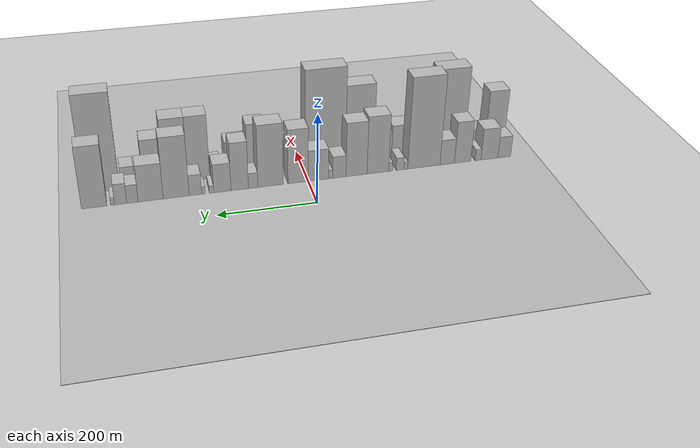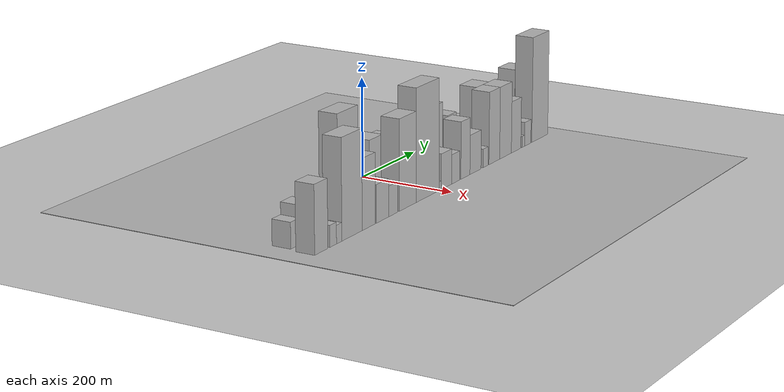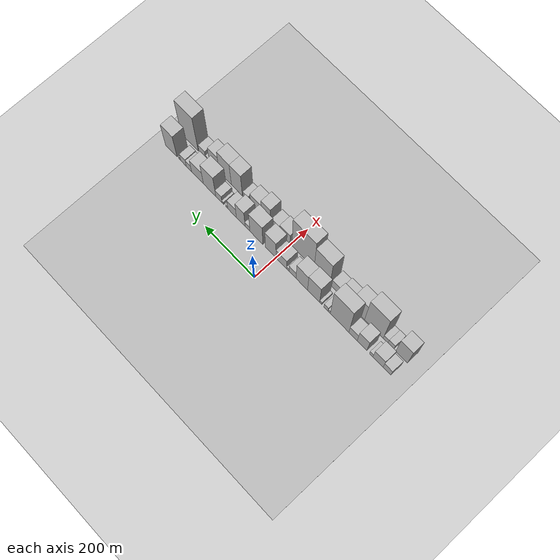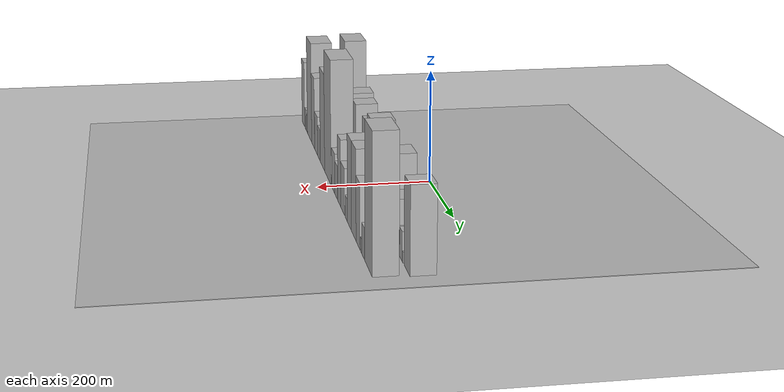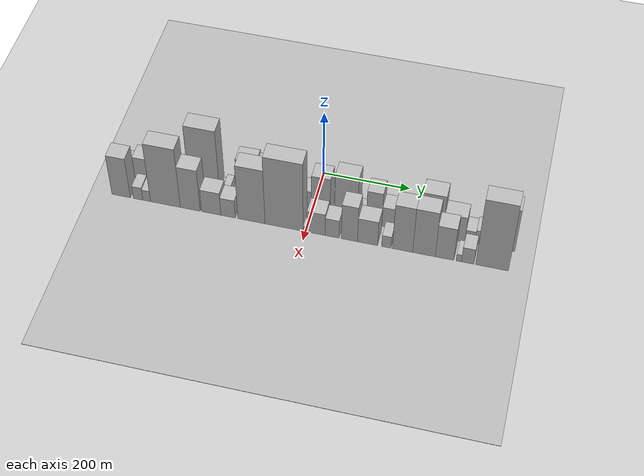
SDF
<sdf version="1.6">
 <world name="default">
  <include><name>ground_plane_1</name><uri>model://HANNAS_ground_plane</uri></include>
  <include>
   <name>ground_plane_2</name>
   <uri>model://HANNAS_ground_plane</uri>
   <pose>100 0 0  0 0 0</pose>
  </include>
  <model name="building_1">
   <static>1</static>
   <pose>100.0000 -428.4176 0 0.000000 0.000000 0.000000</pose>
   <link name="link">
    <pose>0 0 25.50 0 0 0</pose>
    <collision name="collision"><geometry><box><size>40.0000 29.1648 51.0000</size></box></geometry></collision>
    <visual name="visual">
     <cast_shadows>0</cast_shadows>
     <geometry><box><size>40.0000 29.1648 51.0000</size></box></geometry>
     <material>
      <script>
       <uri>model://HANNAS_wall/materials/scripts</uri>
       <uri>model://HANNAS_wall/materials/textures</uri>
       <name>vrc/HANNAS_wall</name>
      </script>
     </material>
    </visual>
   </link>
  </model>
  <model name="building_2">
   <static>1</static>
   <pose>100.0000 -394.8184 0 0.000000 0.000000 0.000000</pose>
   <link name="link">
    <pose>0 0 37.50 0 0 0</pose>
    <collision name="collision"><geometry><box><size>40.0000 38.0336 75.0000</size></box></geometry></collision>
    <visual name="visual">
     <cast_shadows>0</cast_shadows>
     <geometry><box><size>40.0000 38.0336 75.0000</size></box></geometry>
     <material>
      <script>
       <uri>model://HANNAS_wall/materials/scripts</uri>
       <uri>model://HANNAS_wall/materials/textures</uri>
       <name>vrc/HANNAS_wall</name>
      </script>
     </material>
    </visual>
   </link>
  </model>
  <model name="building_3">
   <static>1</static>
   <pose>100.0000 -369.2751 0 0.000000 0.000000 0.000000</pose>
   <link name="link">
    <pose>0 0 13.50 0 0 0</pose>
    <collision name="collision"><geometry><box><size>40.0000 13.0530 27.0000</size></box></geometry></collision>
    <visual name="visual">
     <cast_shadows>0</cast_shadows>
     <geometry><box><size>40.0000 13.0530 27.0000</size></box></geometry>
     <material>
      <script>
       <uri>model://HANNAS_wall/materials/scripts</uri>
       <uri>model://HANNAS_wall/materials/textures</uri>
       <name>vrc/HANNAS_wall</name>
      </script>
     </material>
    </visual>
   </link>
  </model>
  <model name="building_4">
   <static>1</static>
   <pose>100.0000 -334.5450 0 0.000000 0.000000 0.000000</pose>
   <link name="link">
    <pose>0 0 49.50 0 0 0</pose>
    <collision name="collision"><geometry><box><size>40.0000 36.4071 99.0000</size></box></geometry></collision>
    <visual name="visual">
     <cast_shadows>0</cast_shadows>
     <geometry><box><size>40.0000 36.4071 99.0000</size></box></geometry>
     <material>
      <script>
       <uri>model://HANNAS_wall/materials/scripts</uri>
       <uri>model://HANNAS_wall/materials/textures</uri>
       <name>vrc/HANNAS_wall</name>
      </script>
     </material>
    </visual>
   </link>
  </model>
  <model name="building_5">
   <static>1</static>
   <pose>100.0000 -300.3615 0 0.000000 0.000000 0.000000</pose>
   <link name="link">
    <pose>0 0 30.00 0 0 0</pose>
    <collision name="collision"><geometry><box><size>40.0000 31.9601 60.0000</size></box></geometry></collision>
    <visual name="visual">
     <cast_shadows>0</cast_shadows>
     <geometry><box><size>40.0000 31.9601 60.0000</size></box></geometry>
     <material>
      <script>
       <uri>model://HANNAS_wall/materials/scripts</uri>
       <uri>model://HANNAS_wall/materials/textures</uri>
       <name>vrc/HANNAS_wall</name>
      </script>
     </material>
    </visual>
   </link>
  </model>
  <model name="building_6">
   <static>1</static>
   <pose>100.0000 -248.7474 0 0.000000 0.000000 0.000000</pose>
   <link name="link">
    <pose>0 0 106.50 0 0 0</pose>
    <collision name="collision"><geometry><box><size>40.0000 71.2680 213.0000</size></box></geometry></collision>
    <visual name="visual">
     <cast_shadows>0</cast_shadows>
     <geometry><box><size>40.0000 71.2680 213.0000</size></box></geometry>
     <material>
      <script>
       <uri>model://HANNAS_wall/materials/scripts</uri>
       <uri>model://HANNAS_wall/materials/textures</uri>
       <name>vrc/HANNAS_wall</name>
      </script>
     </material>
    </visual>
   </link>
  </model>
  <model name="building_7">
   <static>1</static>
   <pose>100.0000 -208.8636 0 0.000000 0.000000 0.000000</pose>
   <link name="link">
    <pose>0 0 9.00 0 0 0</pose>
    <collision name="collision"><geometry><box><size>40.0000 8.4998 18.0000</size></box></geometry></collision>
    <visual name="visual">
     <cast_shadows>0</cast_shadows>
     <geometry><box><size>40.0000 8.4998 18.0000</size></box></geometry>
     <material>
      <script>
       <uri>model://HANNAS_wall/materials/scripts</uri>
       <uri>model://HANNAS_wall/materials/textures</uri>
       <name>vrc/HANNAS_wall</name>
      </script>
     </material>
    </visual>
   </link>
  </model>
  <model name="building_8">
   <static>1</static>
   <pose>100.0000 -196.3569 0 0.000000 0.000000 0.000000</pose>
   <link name="link">
    <pose>0 0 15.00 0 0 0</pose>
    <collision name="collision"><geometry><box><size>40.0000 16.5135 30.0000</size></box></geometry></collision>
    <visual name="visual">
     <cast_shadows>0</cast_shadows>
     <geometry><box><size>40.0000 16.5135 30.0000</size></box></geometry>
     <material>
      <script>
       <uri>model://HANNAS_wall/materials/scripts</uri>
       <uri>model://HANNAS_wall/materials/textures</uri>
       <name>vrc/HANNAS_wall</name>
      </script>
     </material>
    </visual>
   </link>
  </model>
  <model name="building_9">
   <static>1</static>
   <pose>100.0000 -175.8252 0 0.000000 0.000000 0.000000</pose>
   <link name="link">
    <pose>0 0 10.50 0 0 0</pose>
    <collision name="collision"><geometry><box><size>40.0000 8.5500 21.0000</size></box></geometry></collision>
    <visual name="visual">
     <cast_shadows>0</cast_shadows>
     <geometry><box><size>40.0000 8.5500 21.0000</size></box></geometry>
     <material>
      <script>
       <uri>model://HANNAS_wall/materials/scripts</uri>
       <uri>model://HANNAS_wall/materials/textures</uri>
       <name>vrc/HANNAS_wall</name>
      </script>
     </material>
    </visual>
   </link>
  </model>
  <model name="building_10">
   <static>1</static>
   <pose>100.0000 -148.1259 0 0.000000 0.000000 0.000000</pose>
   <link name="link">
    <pose>0 0 67.50 0 0 0</pose>
    <collision name="collision"><geometry><box><size>40.0000 46.8485 135.0000</size></box></geometry></collision>
    <visual name="visual">
     <cast_shadows>0</cast_shadows>
     <geometry><box><size>40.0000 46.8485 135.0000</size></box></geometry>
     <material>
      <script>
       <uri>model://HANNAS_wall/materials/scripts</uri>
       <uri>model://HANNAS_wall/materials/textures</uri>
       <name>vrc/HANNAS_wall</name>
      </script>
     </material>
    </visual>
   </link>
  </model>
  <model name="building_11">
   <static>1</static>
   <pose>100.0000 -102.1236 0 0.000000 0.000000 0.000000</pose>
   <link name="link">
    <pose>0 0 63.00 0 0 0</pose>
    <collision name="collision"><geometry><box><size>40.0000 45.1561 126.0000</size></box></geometry></collision>
    <visual name="visual">
     <cast_shadows>0</cast_shadows>
     <geometry><box><size>40.0000 45.1561 126.0000</size></box></geometry>
     <material>
      <script>
       <uri>model://HANNAS_wall/materials/scripts</uri>
       <uri>model://HANNAS_wall/materials/textures</uri>
       <name>vrc/HANNAS_wall</name>
      </script>
     </material>
    </visual>
   </link>
  </model>
  <model name="building_12">
   <static>1</static>
   <pose>100.0000 -65.4290 0 0.000000 0.000000 0.000000</pose>
   <link name="link">
    <pose>0 0 25.50 0 0 0</pose>
    <collision name="collision"><geometry><box><size>40.0000 28.2332 51.0000</size></box></geometry></collision>
    <visual name="visual">
     <cast_shadows>0</cast_shadows>
     <geometry><box><size>40.0000 28.2332 51.0000</size></box></geometry>
     <material>
      <script>
       <uri>model://HANNAS_wall/materials/scripts</uri>
       <uri>model://HANNAS_wall/materials/textures</uri>
       <name>vrc/HANNAS_wall</name>
      </script>
     </material>
    </visual>
   </link>
  </model>
  <model name="building_13">
   <static>1</static>
   <pose>100.0000 -47.0331 0 0.000000 0.000000 0.000000</pose>
   <link name="link">
    <pose>0 0 10.50 0 0 0</pose>
    <collision name="collision"><geometry><box><size>40.0000 8.5584 21.0000</size></box></geometry></collision>
    <visual name="visual">
     <cast_shadows>0</cast_shadows>
     <geometry><box><size>40.0000 8.5584 21.0000</size></box></geometry>
     <material>
      <script>
       <uri>model://HANNAS_wall/materials/scripts</uri>
       <uri>model://HANNAS_wall/materials/textures</uri>
       <name>vrc/HANNAS_wall</name>
      </script>
     </material>
    </visual>
   </link>
  </model>
  <model name="building_14">
   <static>1</static>
   <pose>100.0000 -21.4833 0 0.000000 0.000000 0.000000</pose>
   <link name="link">
    <pose>0 0 36.00 0 0 0</pose>
    <collision name="collision"><geometry><box><size>40.0000 42.5412 72.0000</size></box></geometry></collision>
    <visual name="visual">
     <cast_shadows>0</cast_shadows>
     <geometry><box><size>40.0000 42.5412 72.0000</size></box></geometry>
     <material>
      <script>
       <uri>model://HANNAS_wall/materials/scripts</uri>
       <uri>model://HANNAS_wall/materials/textures</uri>
       <name>vrc/HANNAS_wall</name>
      </script>
     </material>
    </visual>
   </link>
  </model>
  <model name="building_15">
   <static>1</static>
   <pose>100.0000 21.1095 0 0.000000 0.000000 0.000000</pose>
   <link name="link">
    <pose>0 0 63.00 0 0 0</pose>
    <collision name="collision"><geometry><box><size>40.0000 42.6445 126.0000</size></box></geometry></collision>
    <visual name="visual">
     <cast_shadows>0</cast_shadows>
     <geometry><box><size>40.0000 42.6445 126.0000</size></box></geometry>
     <material>
      <script>
       <uri>model://HANNAS_wall/materials/scripts</uri>
       <uri>model://HANNAS_wall/materials/textures</uri>
       <name>vrc/HANNAS_wall</name>
      </script>
     </material>
    </visual>
   </link>
  </model>
  <model name="building_16">
   <static>1</static>
   <pose>100.0000 78.7054 0 0.000000 0.000000 0.000000</pose>
   <link name="link">
    <pose>0 0 72.00 0 0 0</pose>
    <collision name="collision"><geometry><box><size>40.0000 52.5472 144.0000</size></box></geometry></collision>
    <visual name="visual">
     <cast_shadows>0</cast_shadows>
     <geometry><box><size>40.0000 52.5472 144.0000</size></box></geometry>
     <material>
      <script>
       <uri>model://HANNAS_wall/materials/scripts</uri>
       <uri>model://HANNAS_wall/materials/textures</uri>
       <name>vrc/HANNAS_wall</name>
      </script>
     </material>
    </visual>
   </link>
  </model>
  <model name="building_17">
   <static>1</static>
   <pose>100.0000 114.7235 0 0.000000 0.000000 0.000000</pose>
   <link name="link">
    <pose>0 0 18.00 0 0 0</pose>
    <collision name="collision"><geometry><box><size>40.0000 19.4891 36.0000</size></box></geometry></collision>
    <visual name="visual">
     <cast_shadows>0</cast_shadows>
     <geometry><box><size>40.0000 19.4891 36.0000</size></box></geometry>
     <material>
      <script>
       <uri>model://HANNAS_wall/materials/scripts</uri>
       <uri>model://HANNAS_wall/materials/textures</uri>
       <name>vrc/HANNAS_wall</name>
      </script>
     </material>
    </visual>
   </link>
  </model>
  <model name="building_18">
   <static>1</static>
   <pose>100.0000 142.2435 0 0.000000 0.000000 0.000000</pose>
   <link name="link">
    <pose>0 0 55.50 0 0 0</pose>
    <collision name="collision"><geometry><box><size>40.0000 35.5508 111.0000</size></box></geometry></collision>
    <visual name="visual">
     <cast_shadows>0</cast_shadows>
     <geometry><box><size>40.0000 35.5508 111.0000</size></box></geometry>
     <material>
      <script>
       <uri>model://HANNAS_wall/materials/scripts</uri>
       <uri>model://HANNAS_wall/materials/textures</uri>
       <name>vrc/HANNAS_wall</name>
      </script>
     </material>
    </visual>
   </link>
  </model>
  <model name="building_19">
   <static>1</static>
   <pose>100.0000 177.6284 0 0.000000 0.000000 0.000000</pose>
   <link name="link">
    <pose>0 0 33.00 0 0 0</pose>
    <collision name="collision"><geometry><box><size>40.0000 35.2189 66.0000</size></box></geometry></collision>
    <visual name="visual">
     <cast_shadows>0</cast_shadows>
     <geometry><box><size>40.0000 35.2189 66.0000</size></box></geometry>
     <material>
      <script>
       <uri>model://HANNAS_wall/materials/scripts</uri>
       <uri>model://HANNAS_wall/materials/textures</uri>
       <name>vrc/HANNAS_wall</name>
      </script>
     </material>
    </visual>
   </link>
  </model>
  <model name="building_20">
   <static>1</static>
   <pose>100.0000 199.5495 0 0.000000 0.000000 0.000000</pose>
   <link name="link">
    <pose>0 0 9.00 0 0 0</pose>
    <collision name="collision"><geometry><box><size>40.0000 8.6233 18.0000</size></box></geometry></collision>
    <visual name="visual">
     <cast_shadows>0</cast_shadows>
     <geometry><box><size>40.0000 8.6233 18.0000</size></box></geometry>
     <material>
      <script>
       <uri>model://HANNAS_wall/materials/scripts</uri>
       <uri>model://HANNAS_wall/materials/textures</uri>
       <name>vrc/HANNAS_wall</name>
      </script>
     </material>
    </visual>
   </link>
  </model>
  <model name="building_21">
   <static>1</static>
   <pose>100.0000 215.5440 0 0.000000 0.000000 0.000000</pose>
   <link name="link">
    <pose>0 0 9.00 0 0 0</pose>
    <collision name="collision"><geometry><box><size>40.0000 7.3657 18.0000</size></box></geometry></collision>
    <visual name="visual">
     <cast_shadows>0</cast_shadows>
     <geometry><box><size>40.0000 7.3657 18.0000</size></box></geometry>
     <material>
      <script>
       <uri>model://HANNAS_wall/materials/scripts</uri>
       <uri>model://HANNAS_wall/materials/textures</uri>
       <name>vrc/HANNAS_wall</name>
      </script>
     </material>
    </visual>
   </link>
  </model>
  <model name="building_22">
   <static>1</static>
   <pose>100.0000 231.9011 0 0.000000 0.000000 0.000000</pose>
   <link name="link">
    <pose>0 0 24.00 0 0 0</pose>
    <collision name="collision"><geometry><box><size>40.0000 25.3483 48.0000</size></box></geometry></collision>
    <visual name="visual">
     <cast_shadows>0</cast_shadows>
     <geometry><box><size>40.0000 25.3483 48.0000</size></box></geometry>
     <material>
      <script>
       <uri>model://HANNAS_wall/materials/scripts</uri>
       <uri>model://HANNAS_wall/materials/textures</uri>
       <name>vrc/HANNAS_wall</name>
      </script>
     </material>
    </visual>
   </link>
  </model>
  <model name="building_23">
   <static>1</static>
   <pose>100.0000 270.3951 0 0.000000 0.000000 0.000000</pose>
   <link name="link">
    <pose>0 0 70.50 0 0 0</pose>
    <collision name="collision"><geometry><box><size>40.0000 51.6399 141.0000</size></box></geometry></collision>
    <visual name="visual">
     <cast_shadows>0</cast_shadows>
     <geometry><box><size>40.0000 51.6399 141.0000</size></box></geometry>
     <material>
      <script>
       <uri>model://HANNAS_wall/materials/scripts</uri>
       <uri>model://HANNAS_wall/materials/textures</uri>
       <name>vrc/HANNAS_wall</name>
      </script>
     </material>
    </visual>
   </link>
  </model>
  <model name="building_24">
   <static>1</static>
   <pose>100.0000 321.0570 0 0.000000 0.000000 0.000000</pose>
   <link name="link">
    <pose>0 0 42.00 0 0 0</pose>
    <collision name="collision"><geometry><box><size>40.0000 49.6840 84.0000</size></box></geometry></collision>
    <visual name="visual">
     <cast_shadows>0</cast_shadows>
     <geometry><box><size>40.0000 49.6840 84.0000</size></box></geometry>
     <material>
      <script>
       <uri>model://HANNAS_wall/materials/scripts</uri>
       <uri>model://HANNAS_wall/materials/textures</uri>
       <name>vrc/HANNAS_wall</name>
      </script>
     </material>
    </visual>
   </link>
  </model>
  <model name="building_25">
   <static>1</static>
   <pose>100.0000 356.9254 0 0.000000 0.000000 0.000000</pose>
   <link name="link">
    <pose>0 0 21.00 0 0 0</pose>
    <collision name="collision"><geometry><box><size>40.0000 22.0527 42.0000</size></box></geometry></collision>
    <visual name="visual">
     <cast_shadows>0</cast_shadows>
     <geometry><box><size>40.0000 22.0527 42.0000</size></box></geometry>
     <material>
      <script>
       <uri>model://HANNAS_wall/materials/scripts</uri>
       <uri>model://HANNAS_wall/materials/textures</uri>
       <name>vrc/HANNAS_wall</name>
      </script>
     </material>
    </visual>
   </link>
  </model>
  <model name="building_26">
   <static>1</static>
   <pose>100.0000 379.9782 0 0.000000 0.000000 0.000000</pose>
   <link name="link">
    <pose>0 0 24.00 0 0 0</pose>
    <collision name="collision"><geometry><box><size>40.0000 24.0531 48.0000</size></box></geometry></collision>
    <visual name="visual">
     <cast_shadows>0</cast_shadows>
     <geometry><box><size>40.0000 24.0531 48.0000</size></box></geometry>
     <material>
      <script>
       <uri>model://HANNAS_wall/materials/scripts</uri>
       <uri>model://HANNAS_wall/materials/textures</uri>
       <name>vrc/HANNAS_wall</name>
      </script>
     </material>
    </visual>
   </link>
  </model>
  <model name="building_27">
   <static>1</static>
   <pose>100.0000 395.9867 0 0.000000 0.000000 0.000000</pose>
   <link name="link">
    <pose>0 0 9.00 0 0 0</pose>
    <collision name="collision"><geometry><box><size>40.0000 7.9638 18.0000</size></box></geometry></collision>
    <visual name="visual">
     <cast_shadows>0</cast_shadows>
     <geometry><box><size>40.0000 7.9638 18.0000</size></box></geometry>
     <material>
      <script>
       <uri>model://HANNAS_wall/materials/scripts</uri>
       <uri>model://HANNAS_wall/materials/textures</uri>
       <name>vrc/HANNAS_wall</name>
      </script>
     </material>
    </visual>
   </link>
  </model>
  <model name="building_28">
   <static>1</static>
   <pose>100.0000 431.5315 0 0.000000 0.000000 0.000000</pose>
   <link name="link">
    <pose>0 0 70.50 0 0 0</pose>
    <collision name="collision"><geometry><box><size>40.0000 49.1260 141.0000</size></box></geometry></collision>
    <visual name="visual">
     <cast_shadows>0</cast_shadows>
     <geometry><box><size>40.0000 49.1260 141.0000</size></box></geometry>
     <material>
      <script>
       <uri>model://HANNAS_wall/materials/scripts</uri>
       <uri>model://HANNAS_wall/materials/textures</uri>
       <name>vrc/HANNAS_wall</name>
      </script>
     </material>
    </visual>
   </link>
  </model>
  <model name="building_29">
   <static>1</static>
   <pose>155.0000 -428.1495 0 0.000000 0.000000 0.000000</pose>
   <link name="link">
    <pose>0 0 66.00 0 0 0</pose>
    <collision name="collision"><geometry><box><size>40.0000 43.7011 132.0000</size></box></geometry></collision>
    <visual name="visual">
     <cast_shadows>0</cast_shadows>
     <geometry><box><size>40.0000 43.7011 132.0000</size></box></geometry>
     <material>
      <script>
       <uri>model://HANNAS_wall/materials/scripts</uri>
       <uri>model://HANNAS_wall/materials/textures</uri>
       <name>vrc/HANNAS_wall</name>
      </script>
     </material>
    </visual>
   </link>
  </model>
  <model name="building_30">
   <static>1</static>
   <pose>155.0000 -388.2045 0 0.000000 0.000000 0.000000</pose>
   <link name="link">
    <pose>0 0 21.00 0 0 0</pose>
    <collision name="collision"><geometry><box><size>40.0000 22.1888 42.0000</size></box></geometry></collision>
    <visual name="visual">
     <cast_shadows>0</cast_shadows>
     <geometry><box><size>40.0000 22.1888 42.0000</size></box></geometry>
     <material>
      <script>
       <uri>model://HANNAS_wall/materials/scripts</uri>
       <uri>model://HANNAS_wall/materials/textures</uri>
       <name>vrc/HANNAS_wall</name>
      </script>
     </material>
    </visual>
   </link>
  </model>
  <model name="building_31">
   <static>1</static>
   <pose>155.0000 -367.9479 0 0.000000 0.000000 0.000000</pose>
   <link name="link">
    <pose>0 0 18.00 0 0 0</pose>
    <collision name="collision"><geometry><box><size>40.0000 18.3244 36.0000</size></box></geometry></collision>
    <visual name="visual">
     <cast_shadows>0</cast_shadows>
     <geometry><box><size>40.0000 18.3244 36.0000</size></box></geometry>
     <material>
      <script>
       <uri>model://HANNAS_wall/materials/scripts</uri>
       <uri>model://HANNAS_wall/materials/textures</uri>
       <name>vrc/HANNAS_wall</name>
      </script>
     </material>
    </visual>
   </link>
  </model>
  <model name="building_32">
   <static>1</static>
   <pose>155.0000 -323.6758 0 0.000000 0.000000 0.000000</pose>
   <link name="link">
    <pose>0 0 97.50 0 0 0</pose>
    <collision name="collision"><geometry><box><size>40.0000 70.2199 195.0000</size></box></geometry></collision>
    <visual name="visual">
     <cast_shadows>0</cast_shadows>
     <geometry><box><size>40.0000 70.2199 195.0000</size></box></geometry>
     <material>
      <script>
       <uri>model://HANNAS_wall/materials/scripts</uri>
       <uri>model://HANNAS_wall/materials/textures</uri>
       <name>vrc/HANNAS_wall</name>
      </script>
     </material>
    </visual>
   </link>
  </model>
  <model name="building_33">
   <static>1</static>
   <pose>155.0000 -265.4683 0 0.000000 0.000000 0.000000</pose>
   <link name="link">
    <pose>0 0 69.00 0 0 0</pose>
    <collision name="collision"><geometry><box><size>40.0000 46.1950 138.0000</size></box></geometry></collision>
    <visual name="visual">
     <cast_shadows>0</cast_shadows>
     <geometry><box><size>40.0000 46.1950 138.0000</size></box></geometry>
     <material>
      <script>
       <uri>model://HANNAS_wall/materials/scripts</uri>
       <uri>model://HANNAS_wall/materials/textures</uri>
       <name>vrc/HANNAS_wall</name>
      </script>
     </material>
    </visual>
   </link>
  </model>
  <model name="building_34">
   <static>1</static>
   <pose>155.0000 -216.9520 0 0.000000 0.000000 0.000000</pose>
   <link name="link">
    <pose>0 0 37.50 0 0 0</pose>
    <collision name="collision"><geometry><box><size>40.0000 44.8376 75.0000</size></box></geometry></collision>
    <visual name="visual">
     <cast_shadows>0</cast_shadows>
     <geometry><box><size>40.0000 44.8376 75.0000</size></box></geometry>
     <material>
      <script>
       <uri>model://HANNAS_wall/materials/scripts</uri>
       <uri>model://HANNAS_wall/materials/textures</uri>
       <name>vrc/HANNAS_wall</name>
      </script>
     </material>
    </visual>
   </link>
  </model>
  <model name="building_35">
   <static>1</static>
   <pose>155.0000 -177.7944 0 0.000000 0.000000 0.000000</pose>
   <link name="link">
    <pose>0 0 30.00 0 0 0</pose>
    <collision name="collision"><geometry><box><size>40.0000 33.4777 60.0000</size></box></geometry></collision>
    <visual name="visual">
     <cast_shadows>0</cast_shadows>
     <geometry><box><size>40.0000 33.4777 60.0000</size></box></geometry>
     <material>
      <script>
       <uri>model://HANNAS_wall/materials/scripts</uri>
       <uri>model://HANNAS_wall/materials/textures</uri>
       <name>vrc/HANNAS_wall</name>
      </script>
     </material>
    </visual>
   </link>
  </model>
  <model name="building_36">
   <static>1</static>
   <pose>155.0000 -123.9156 0 0.000000 0.000000 0.000000</pose>
   <link name="link">
    <pose>0 0 90.00 0 0 0</pose>
    <collision name="collision"><geometry><box><size>40.0000 62.2797 180.0000</size></box></geometry></collision>
    <visual name="visual">
     <cast_shadows>0</cast_shadows>
     <geometry><box><size>40.0000 62.2797 180.0000</size></box></geometry>
     <material>
      <script>
       <uri>model://HANNAS_wall/materials/scripts</uri>
       <uri>model://HANNAS_wall/materials/textures</uri>
       <name>vrc/HANNAS_wall</name>
      </script>
     </material>
    </visual>
   </link>
  </model>
  <model name="building_37">
   <static>1</static>
   <pose>155.0000 -49.1546 0 0.000000 0.000000 0.000000</pose>
   <link name="link">
    <pose>0 0 112.50 0 0 0</pose>
    <collision name="collision"><geometry><box><size>40.0000 87.2423 225.0000</size></box></geometry></collision>
    <visual name="visual">
     <cast_shadows>0</cast_shadows>
     <geometry><box><size>40.0000 87.2423 225.0000</size></box></geometry>
     <material>
      <script>
       <uri>model://HANNAS_wall/materials/scripts</uri>
       <uri>model://HANNAS_wall/materials/textures</uri>
       <name>vrc/HANNAS_wall</name>
      </script>
     </material>
    </visual>
   </link>
  </model>
  <model name="building_38">
   <static>1</static>
   <pose>155.0000 -1.1348 0 0.000000 0.000000 0.000000</pose>
   <link name="link">
    <pose>0 0 9.00 0 0 0</pose>
    <collision name="collision"><geometry><box><size>40.0000 8.7972 18.0000</size></box></geometry></collision>
    <visual name="visual">
     <cast_shadows>0</cast_shadows>
     <geometry><box><size>40.0000 8.7972 18.0000</size></box></geometry>
     <material>
      <script>
       <uri>model://HANNAS_wall/materials/scripts</uri>
       <uri>model://HANNAS_wall/materials/textures</uri>
       <name>vrc/HANNAS_wall</name>
      </script>
     </material>
    </visual>
   </link>
  </model>
  <model name="building_39">
   <static>1</static>
   <pose>155.0000 23.8371 0 0.000000 0.000000 0.000000</pose>
   <link name="link">
    <pose>0 0 36.00 0 0 0</pose>
    <collision name="collision"><geometry><box><size>40.0000 41.1467 72.0000</size></box></geometry></collision>
    <visual name="visual">
     <cast_shadows>0</cast_shadows>
     <geometry><box><size>40.0000 41.1467 72.0000</size></box></geometry>
     <material>
      <script>
       <uri>model://HANNAS_wall/materials/scripts</uri>
       <uri>model://HANNAS_wall/materials/textures</uri>
       <name>vrc/HANNAS_wall</name>
      </script>
     </material>
    </visual>
   </link>
  </model>
  <model name="building_40">
   <static>1</static>
   <pose>155.0000 60.0398 0 0.000000 0.000000 0.000000</pose>
   <link name="link">
    <pose>0 0 30.00 0 0 0</pose>
    <collision name="collision"><geometry><box><size>40.0000 31.2588 60.0000</size></box></geometry></collision>
    <visual name="visual">
     <cast_shadows>0</cast_shadows>
     <geometry><box><size>40.0000 31.2588 60.0000</size></box></geometry>
     <material>
      <script>
       <uri>model://HANNAS_wall/materials/scripts</uri>
       <uri>model://HANNAS_wall/materials/textures</uri>
       <name>vrc/HANNAS_wall</name>
      </script>
     </material>
    </visual>
   </link>
  </model>
  <model name="building_41">
   <static>1</static>
   <pose>155.0000 98.9988 0 0.000000 0.000000 0.000000</pose>
   <link name="link">
    <pose>0 0 58.50 0 0 0</pose>
    <collision name="collision"><geometry><box><size>40.0000 36.6593 117.0000</size></box></geometry></collision>
    <visual name="visual">
     <cast_shadows>0</cast_shadows>
     <geometry><box><size>40.0000 36.6593 117.0000</size></box></geometry>
     <material>
      <script>
       <uri>model://HANNAS_wall/materials/scripts</uri>
       <uri>model://HANNAS_wall/materials/textures</uri>
       <name>vrc/HANNAS_wall</name>
      </script>
     </material>
    </visual>
   </link>
  </model>
  <model name="building_42">
   <static>1</static>
   <pose>155.0000 139.8299 0 0.000000 0.000000 0.000000</pose>
   <link name="link">
    <pose>0 0 40.50 0 0 0</pose>
    <collision name="collision"><geometry><box><size>40.0000 45.0028 81.0000</size></box></geometry></collision>
    <visual name="visual">
     <cast_shadows>0</cast_shadows>
     <geometry><box><size>40.0000 45.0028 81.0000</size></box></geometry>
     <material>
      <script>
       <uri>model://HANNAS_wall/materials/scripts</uri>
       <uri>model://HANNAS_wall/materials/textures</uri>
       <name>vrc/HANNAS_wall</name>
      </script>
     </material>
    </visual>
   </link>
  </model>
  <model name="building_43">
   <static>1</static>
   <pose>155.0000 181.8493 0 0.000000 0.000000 0.000000</pose>
   <link name="link">
    <pose>0 0 19.50 0 0 0</pose>
    <collision name="collision"><geometry><box><size>40.0000 21.0360 39.0000</size></box></geometry></collision>
    <visual name="visual">
     <cast_shadows>0</cast_shadows>
     <geometry><box><size>40.0000 21.0360 39.0000</size></box></geometry>
     <material>
      <script>
       <uri>model://HANNAS_wall/materials/scripts</uri>
       <uri>model://HANNAS_wall/materials/textures</uri>
       <name>vrc/HANNAS_wall</name>
      </script>
     </material>
    </visual>
   </link>
  </model>
  <model name="building_44">
   <static>1</static>
   <pose>155.0000 217.9306 0 0.000000 0.000000 0.000000</pose>
   <link name="link">
    <pose>0 0 75.00 0 0 0</pose>
    <collision name="collision"><geometry><box><size>40.0000 45.1266 150.0000</size></box></geometry></collision>
    <visual name="visual">
     <cast_shadows>0</cast_shadows>
     <geometry><box><size>40.0000 45.1266 150.0000</size></box></geometry>
     <material>
      <script>
       <uri>model://HANNAS_wall/materials/scripts</uri>
       <uri>model://HANNAS_wall/materials/textures</uri>
       <name>vrc/HANNAS_wall</name>
      </script>
     </material>
    </visual>
   </link>
  </model>
  <model name="building_45">
   <static>1</static>
   <pose>155.0000 265.3888 0 0.000000 0.000000 0.000000</pose>
   <link name="link">
    <pose>0 0 75.00 0 0 0</pose>
    <collision name="collision"><geometry><box><size>40.0000 49.7899 150.0000</size></box></geometry></collision>
    <visual name="visual">
     <cast_shadows>0</cast_shadows>
     <geometry><box><size>40.0000 49.7899 150.0000</size></box></geometry>
     <material>
      <script>
       <uri>model://HANNAS_wall/materials/scripts</uri>
       <uri>model://HANNAS_wall/materials/textures</uri>
       <name>vrc/HANNAS_wall</name>
      </script>
     </material>
    </visual>
   </link>
  </model>
  <model name="building_46">
   <static>1</static>
   <pose>155.0000 310.8188 0 0.000000 0.000000 0.000000</pose>
   <link name="link">
    <pose>0 0 54.00 0 0 0</pose>
    <collision name="collision"><geometry><box><size>40.0000 41.0702 108.0000</size></box></geometry></collision>
    <visual name="visual">
     <cast_shadows>0</cast_shadows>
     <geometry><box><size>40.0000 41.0702 108.0000</size></box></geometry>
     <material>
      <script>
       <uri>model://HANNAS_wall/materials/scripts</uri>
       <uri>model://HANNAS_wall/materials/textures</uri>
       <name>vrc/HANNAS_wall</name>
      </script>
     </material>
    </visual>
   </link>
  </model>
  <model name="building_47">
   <static>1</static>
   <pose>155.0000 342.1742 0 0.000000 0.000000 0.000000</pose>
   <link name="link">
    <pose>0 0 12.00 0 0 0</pose>
    <collision name="collision"><geometry><box><size>40.0000 11.6406 24.0000</size></box></geometry></collision>
    <visual name="visual">
     <cast_shadows>0</cast_shadows>
     <geometry><box><size>40.0000 11.6406 24.0000</size></box></geometry>
     <material>
      <script>
       <uri>model://HANNAS_wall/materials/scripts</uri>
       <uri>model://HANNAS_wall/materials/textures</uri>
       <name>vrc/HANNAS_wall</name>
      </script>
     </material>
    </visual>
   </link>
  </model>
  <model name="building_48">
   <static>1</static>
   <pose>155.0000 361.5761 0 0.000000 0.000000 0.000000</pose>
   <link name="link">
    <pose>0 0 25.50 0 0 0</pose>
    <collision name="collision"><geometry><box><size>40.0000 27.1631 51.0000</size></box></geometry></collision>
    <visual name="visual">
     <cast_shadows>0</cast_shadows>
     <geometry><box><size>40.0000 27.1631 51.0000</size></box></geometry>
     <material>
      <script>
       <uri>model://HANNAS_wall/materials/scripts</uri>
       <uri>model://HANNAS_wall/materials/textures</uri>
       <name>vrc/HANNAS_wall</name>
      </script>
     </material>
    </visual>
   </link>
  </model>
  <model name="building_49">
   <static>1</static>
   <pose>155.0000 414.8841 0 0.000000 0.000000 0.000000</pose>
   <link name="link">
    <pose>0 0 111.00 0 0 0</pose>
    <collision name="collision"><geometry><box><size>40.0000 71.4529 222.0000</size></box></geometry></collision>
    <visual name="visual">
     <cast_shadows>0</cast_shadows>
     <geometry><box><size>40.0000 71.4529 222.0000</size></box></geometry>
     <material>
      <script>
       <uri>model://HANNAS_wall/materials/scripts</uri>
       <uri>model://HANNAS_wall/materials/textures</uri>
       <name>vrc/HANNAS_wall</name>
      </script>
     </material>
    </visual>
   </link>
  </model>
 </world>
</sdf>
